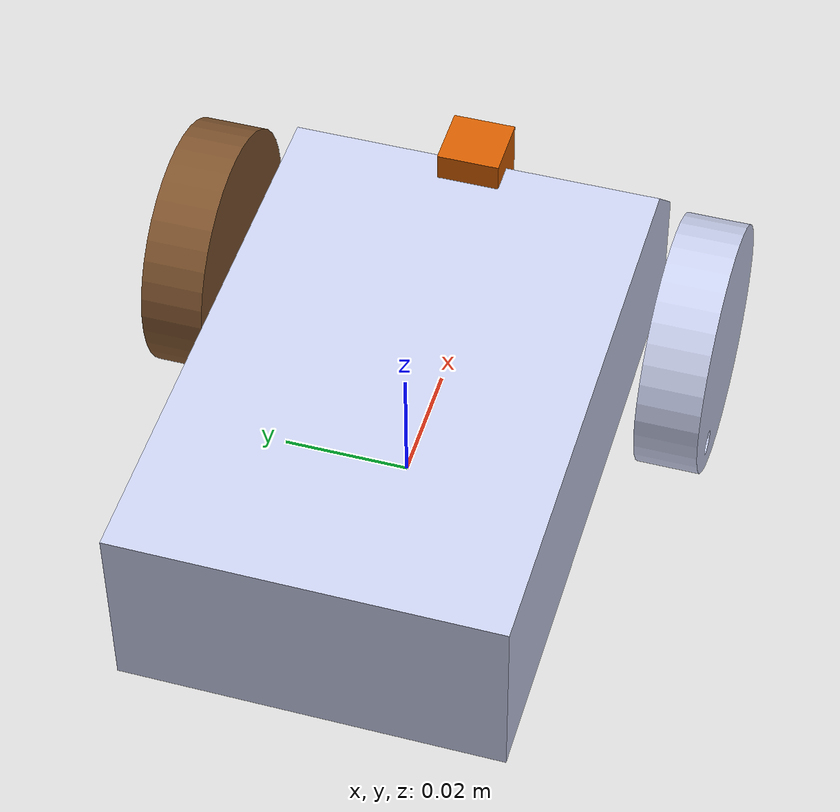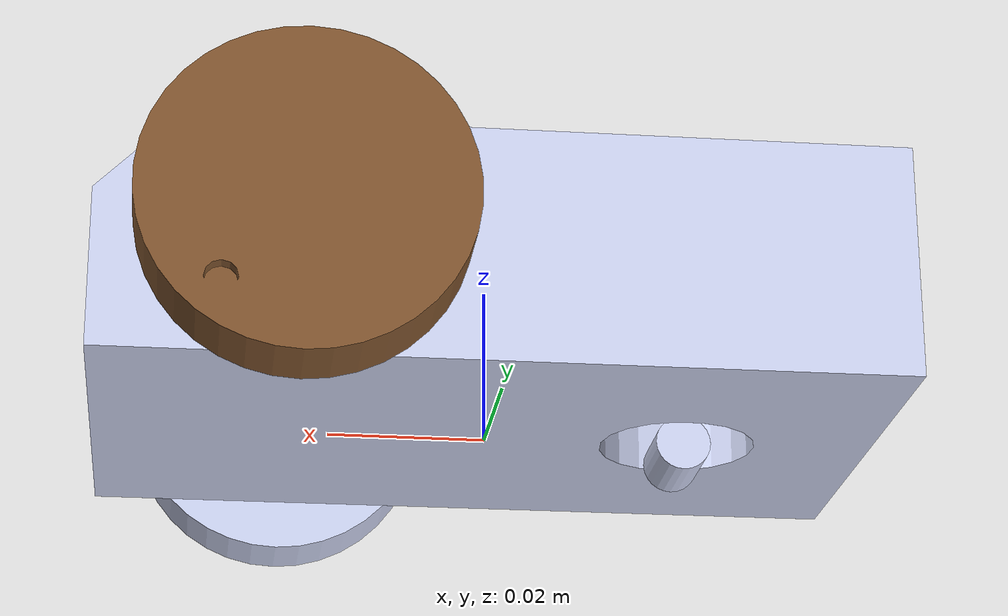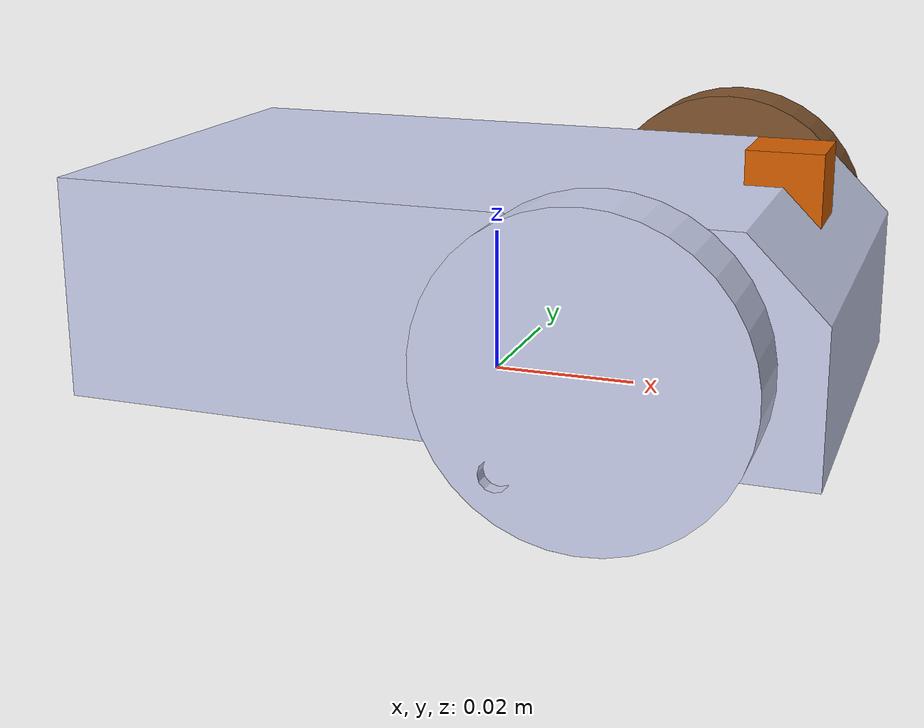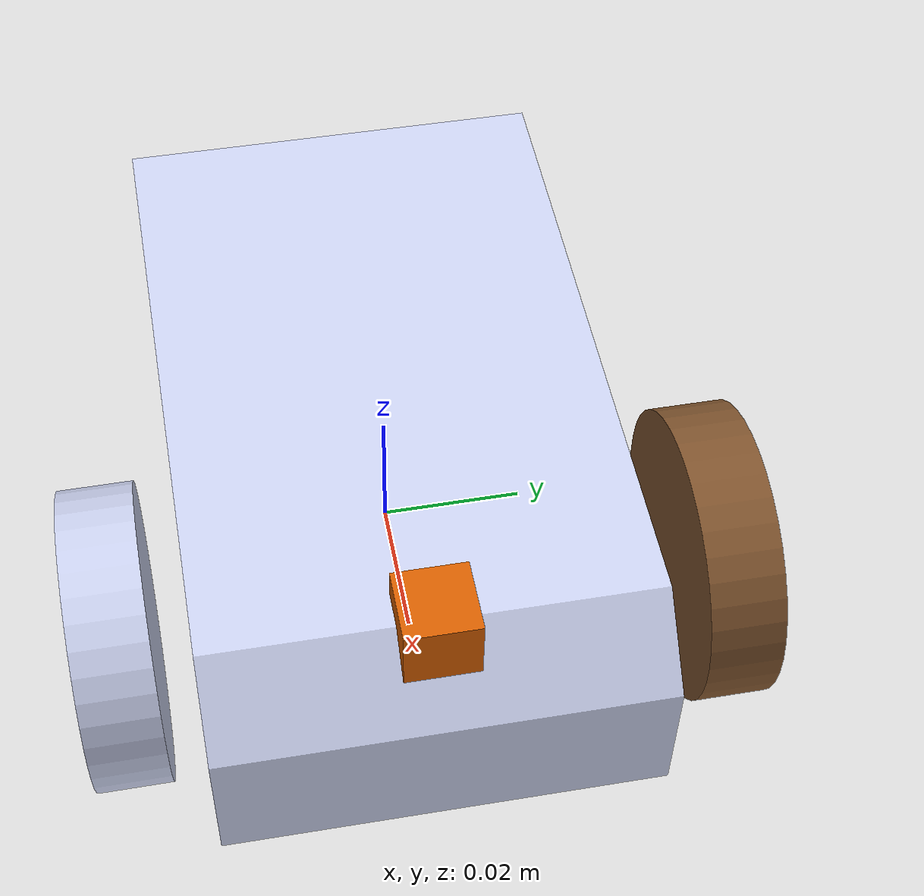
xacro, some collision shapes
<?xml version="1.0" encoding="utf-8"?>

<robot name="priv2m" xmlns:xacro="http://www.ros.org/wiki/xacro">

  <xacro:arg name="prefix" default=""/>
  <xacro:include filename="$(find priv2m)/priv2_description/urdf/priv2.gazebo.xacro" />
  <xacro:include filename="$(find priv2m)/priv2_description/urdf/materials.xacro" />
  <xacro:include filename="$(find priv2m)/priv2_description/urdf/macros.xacro" />

  <link name="$(arg prefix)base_footprint"/>

  <joint name="base_joint" type="fixed">
    <parent link="$(arg prefix)base_footprint"/>
    <child link="$(arg prefix)base_link"/>
    <origin xyz="0.0 0.0 0.0" rpy="0 0 0"/>
  </joint>

 <link  name="$(arg prefix)base_link">
    <inertial>
      <origin
        xyz="0.025 0 0"
        rpy="0 0 0" />
      <mass      value="1" />
      <inertia
        ixx="0.000966667"
        ixy="0"
        ixz="0"
        iyy="0.001133333"
        iyz="0"
        izz="0.000433333" />
    </inertial>
    <visual>
      <origin
        xyz="0 0 0"
        rpy="0 0 3.14" />
      <geometry>
        <mesh
          filename="package://priv2m/priv2_description/meshes/base_link.STL" />
      </geometry>
      <material
        name="">
        <color
          rgba="0.79216 0.81961 0.93333 1" />
      </material>
    </visual>
    <collision>
      <origin
        xyz="0 0 0"
        rpy="0 0 3.14" />
      <geometry>
        <mesh
          filename="package://priv2m/priv2_description/meshes/base_link.STL" />
      </geometry>
    </collision>
  </link>

 <link   name="$(arg prefix)wheel_l">
    <inertial>
      <origin
        xyz="0 0 0"
        rpy="0 0 0" />
      <mass
        value="0.5" />
      <inertia
        ixx="5.42E-06"
        ixy="0"
        ixz="0"
        iyy="5.42E-06"
        iyz="0"
        izz="0.00001" />
    </inertial>
    <visual>
      <origin
        xyz="0 0 0.0"
        rpy="1.57 0 0" />
      <geometry>
        <mesh
          filename="package://priv2m/priv2_description/meshes/wheel_r.STL" />
      </geometry>
      <material
        name="brown">

      </material>
    </visual>
   <collision>
       <origin xyz="0 0 0.005" rpy="0 0 0"/>
      <geometry>
        <cylinder length="0.01" radius="0.02"/>
      </geometry>
    </collision>

  </link>

   <joint
    name="joint_wheel_r"
    type="continuous">
    <origin
      xyz="0.025 0.035 0.015"
      rpy="-1.57 0 0" />
    <parent
      link="$(arg prefix)base_link" />
    <child
      link="$(arg prefix)wheel_l" />
    <axis
      xyz="0 0 1" />

  </joint>

  <link   name="$(arg prefix)wheel_r">
    <inertial>
      <origin
        xyz="0 0 0"
        rpy="0 0 0" />
      <mass
        value="0.5" />
      <inertia
        ixx="5.42E-06"
        ixy="0"
        ixz="0"
        iyy="5.42E-06"
        iyz="0"
        izz="0.00001" />
    </inertial>
    <visual>
      <origin
        xyz="0 0 0"
        rpy="1.57 3.14 0" />
      <geometry>
        <mesh
          filename="package://priv2m/priv2_description/meshes/wheel_l.STL" />
      </geometry>
      <material
        name="">
        <color
          rgba="0.79216 0.81961 0.93333 1" />
      </material>
    </visual>
  <collision>
       <origin xyz="0 0 -0.005" rpy="0 0 0"/>
      <geometry>
        <cylinder length="0.01" radius="0.02"/>
      </geometry>
    </collision>

  </link>

  <joint
    name="joint_wheel_l"
    type="continuous">
   <origin
      xyz="0.025 -0.035 0.015"
      rpy="-1.57 0 0" />
    <parent
      link="$(arg prefix)base_link" />
    <child
      link="$(arg prefix)wheel_r" />
    <axis
      xyz="0 0 1" />

  </joint>

  <link name="$(arg prefix)wheel_b">
    <inertial>
      <origin
        xyz="0 0 0"
        rpy="0 0 0" />
      <mass
        value="0.1" />
   <inertia
        ixx="4.3881E-08"
        ixy="0"
        ixz="0"
        iyy="5.0048E-08"
        iyz="0"
        izz="5.0048E-08" />
    </inertial>
    <visual>
        <origin
        xyz="0 0 0"
        rpy="0 1.57 0" />
        <geometry>
            <cylinder length="0.01" radius="0.0035"/>
        </geometry>
        <material
        name="">
          <color rgba="0.79216 0.81961 0.93333 1" />
        </material>
    </visual>
    <collision>
       <origin
        xyz="0 0 0"
        rpy="0 1.57 0" />
       <geometry>
          <cylinder length="0.01" radius="0.0035"/>
       </geometry>
    </collision>
  </link>

  <joint
    name="joint_wheel_b"
    type="fixed">
    <origin
      xyz="-0.025024 0 -0.001"
      rpy="0 0 1.57" />
    <parent
      link="$(arg prefix)base_link" />
    <child
      link="$(arg prefix)wheel_b" />
    <axis
      xyz="0 0 1" />
  </joint>

 <!-- hokuyo -->
  <link name="$(arg prefix)hokuyo">
    <collision>
      <origin xyz="0 0 0" rpy="0 0 0"/>
      <geometry>
    <box size="0.01 0.01 0.01"/>
      </geometry>
    </collision>

    <visual>
      <origin xyz="0 0 0" rpy="0 0 0"/>
      <geometry>
        <mesh filename="package://priv2m/priv2_description/meshes/hokuyo.dae" scale="0.1 0.1 0.1"/>
      </geometry>
    </visual>

    <inertial>
      <mass value="1e-5" />
      <origin xyz="0 0 0" rpy="0 0 0"/>
      <inertia ixx="1e-6" ixy="0" ixz="0" iyy="1e-6" iyz="0" izz="1e-6" />
    </inertial>
  </link>

    <joint name="hokuyo_joint" type="fixed">
    <axis xyz="0 1 0" />
    <origin xyz="0.04 0 0.0295" rpy="0 0 0"/>
    <parent link="$(arg prefix)base_link"/>
    <child link="$(arg prefix)hokuyo"/>
  </joint>

</robot>

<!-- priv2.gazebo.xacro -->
<robot>
 <arg name="prefix" default=""/>
 <gazebo>
   <plugin name="differential_drive_controller" filename="libgazebo_ros_diff_drive.so">
      <legacyMode>false</legacyMode>
      <alwaysOn>false</alwaysOn>
      <updateRate>5</updateRate>
      <leftJoint>joint_wheel_r</leftJoint>
      <rightJoint>joint_wheel_l</rightJoint>
	<wheelAcceleration>1</wheelAcceleration>
	<publishOdomTF>true</publishOdomTF>
	<publishWheelTF>false</publishWheelTF>
	<rosDebugLevel>na</rosDebugLevel>
       <wheelSeparation>0.07</wheelSeparation>
      <wheelDiameter>0.04</wheelDiameter>
      <wheelTorque>20</wheelTorque>
      <commandTopic>cmd_vel</commandTopic>
      <odometryTopic>odom</odometryTopic>
      <odometryFrame>odom</odometryFrame>
<torgue>20</torgue>
      <robotBaseFrame>base_footprint</robotBaseFrame>
<publishWheelJointState>true</publishWheelJointState>
 <publishTf>1</publishTf>
    </plugin>
  </gazebo>
  <gazebo reference="$(arg prefix)base_link">
    <material>Gazebo/White</material>
  </gazebo>

  <gazebo reference="$(arg prefix)wheel_l">
 <mu1>0.5</mu1>
    <mu2>0.1</mu2>
    <kp>500000.0</kp>
    <kd>10.0</kd>
    <minDepth>0.0001</minDepth>
    <maxVel>0.3</maxVel>
    <fdir1>1 0 0</fdir1>
    <material>Gazebo/FlatBlack</material>
  </gazebo>

  <gazebo reference="$(arg prefix)wheel_r">
 <mu1>0.5</mu1>
    <mu2>0.1</mu2>
    <kp>500000.0</kp>
    <kd>10.0</kd>
    <minDepth>0.0001</minDepth>
    <maxVel>0.3</maxVel>
    <fdir1>1 0 0</fdir1>
    <material>Gazebo/FlatBlack</material>
  </gazebo>

  <gazebo reference="$(arg prefix)wheel_b">
    <mu1>0.001</mu1>
    <mu2>0.001</mu2>
    <kp>500000.0</kp>
    <kd>10.0</kd>
    <minDepth>0.0001</minDepth>
    <maxVel>0.7</maxVel>
    <fdir1>1 0 0</fdir1>
    <material>Gazebo/FlatBlack</material>
    <selfCollide>false</selfCollide>
  </gazebo>

 <!-- hokuyo -->
  <gazebo reference="$(arg prefix)hokuyo">
    <sensor type="ray" name="head_hokuyo_sensor">
      <pose>0 0 0 0 0 0</pose>
      <visualize>false</visualize>
      <update_rate>40</update_rate>
      <ray>
        <scan>
          <horizontal>
            <samples>720</samples>
            <resolution>1</resolution>
            <min_angle>-3.14</min_angle>
            <max_angle>3.14</max_angle>
          </horizontal>
        </scan>
        <range>
          <min>0.10</min>
          <max>2.0</max>
          <resolution>0.01</resolution>
        </range>
        <noise>
          <type>gaussian</type>
          <mean>0.0</mean>
          <stddev>0.01</stddev>
        </noise>
      </ray>
      <plugin name="gazebo_ros_head_hokuyo_controller" filename="libgazebo_ros_laser.so">
        <topicName>/priv2/laser/scan</topicName>
        <frameName>hokuyo</frameName>
      </plugin>
    </sensor>
  </gazebo>

</robot>
